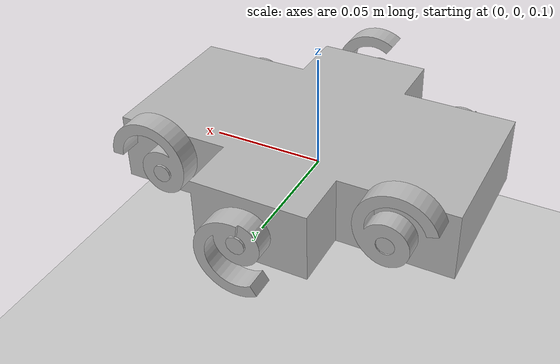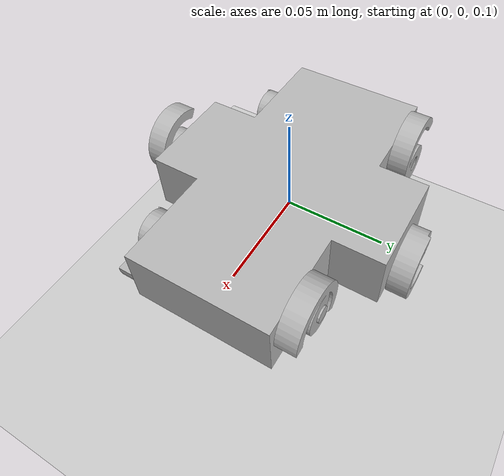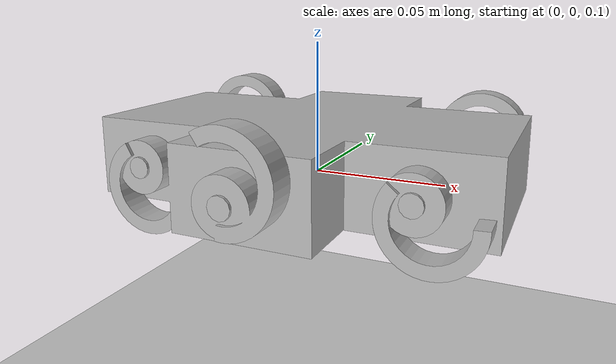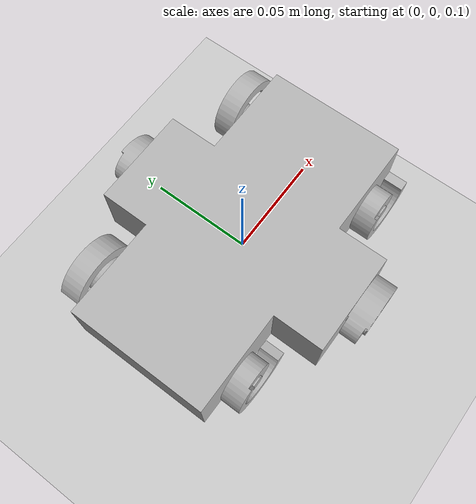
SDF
<?xml version="1.0" ?>
<sdf version="1.5">
  <world name="default">
    <include>
      <uri>model://ground_plane</uri>
    </include>

    <include>
      <uri>model://sun</uri>
    </include>

    <include>
      <uri>model://test</uri>
      <name>test</name>
      <pose>0 0 0.1 0 0 0</pose>
    </include>

  </world>
</sdf>

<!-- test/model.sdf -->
<sdf version="1.5">
  <model name="test">
    <static>false</static>
    <link name="base">
    <pose>0 0 0.0217 0 0 0</pose>
      <inertial>
  <!-- Volume:  3.9287802100e-04 -->
        <mass> 5.0 </mass> <!-- unit:kg -->

  <!-- Inertia matrix --> <!-- unit:kg m^2 -->
        <inertia>
          <ixx>  4.3036377632e-03 </ixx>
          <ixy>  0.0000000000e+00 </ixy>
          <ixz> -0.0000000000e+00 </ixz>
          <iyy>  1.1707939223e-02 </iyy>
          <iyz> -0.0000000000e+00 </iyz>
          <izz>  8.1490764216e-03 </izz>
        </inertia>
      </inertial>
      <collision name="collision">
        <geometry>
          <mesh>
            <uri>model://test/meshes/test.dae</uri>
          </mesh>
        </geometry>
      </collision>
      <visual name="visual">
        <geometry>
          <mesh>
            <uri>model://test/meshes/test.dae</uri>
          </mesh>
        </geometry>
      </visual>
      <sensor name="base_laser" type="ray">
        <always_on>1</always_on>
        <visualize>0</visualize>
        <update_rate>20.000000</update_rate>
        <pose>0.08 0 0 0 0 0</pose>
        <ray>
          <noise>
           <type>gaussian</type>
           <mean>0.0</mean>
           <stddev>0.1</stddev>
          </noise>
          <scan>
            <horizontal>
              <samples>320</samples>
              <resolution>1.000000</resolution>
              <min_angle>-2.268900</min_angle>
              <max_angle>2.268900</max_angle>
            </horizontal>
          </scan>
          <range>
            <min>0.080000</min>
            <max>10.000000</max>
            <resolution>0.010000</resolution>
          </range>
        </ray>
        <plugin name='laser_controller' filename='libgazebo_ros_laser.so'>
          <gaussianNoise>0.005</gaussianNoise>
          <alwaysOn>1</alwaysOn>
          <updateRate>20</updateRate>
          <topicName>scan</topicName>
          <frameName>laser</frameName>
        </plugin>
      </sensor>
    </link>

    <link name="leg1">

      <pose>0 0.0605 0.0067 0 0 0</pose>

        <inertial>
  <!-- Volume:  4.7874590000e-06 -->
          <mass> 0.5 </mass>
  <!-- Inertia matrix -->
          <inertia>
            <ixx>  5.5139218947e-05 </ixx>
            <ixy>  3.1059482703e-06 </ixy>
            <ixz>  7.4517609446e-07 </ixz>
            <iyy>  3.3311825751e-05 </iyy>
   	    <iyz> -6.4708648158e-07 </iyz>
   	    <izz>  8.0856494019e-05 </izz>
          </inertia>
        </inertial>
        <collision name="collision">
        <geometry>
          <mesh>
            <uri>model://test/meshes/leg1.dae</uri>
          </mesh>
        </geometry>
        <surface>
          <friction>
            <ode>
              <mu>0.0</mu>
              <mu2>0.0</mu2>
            </ode>
          </friction>
        </surface>
        </collision>
        <visual name="visual">
          <geometry>
            <mesh>
              <uri>model://test/meshes/leg1.dae</uri>
            </mesh>
          </geometry>
        </visual>
      </link>

    <link name="leg2">
      <pose>0 -0.0605 0.0067 0 0 0</pose>
      <inertial>
  <!-- Volume:  4.7874590000e-06 -->
        <mass> 0.5 </mass>
  <!-- Inertia matrix -->
        <inertia>
          <ixx>  5.5139218947e-05 </ixx>
          <ixy> -3.1059482703e-06 </ixy>
          <ixz> -7.4517609446e-07 </ixz>
          <iyy>  3.3311825751e-05 </iyy>
          <iyz> -6.4708648158e-07 </iyz>
          <izz>  8.0856494019e-05 </izz>
        </inertia>
      </inertial>
      <collision name="collision">
        <geometry>
          <mesh>
            <uri>model://test/meshes/leg2.dae</uri>
          </mesh>
        </geometry>
      <surface>
        <friction>
          <ode>
            <mu>0.0</mu>
            <mu2>0.0</mu2>
          </ode>
        </friction>
      </surface>
        </collision>
      <visual name="visual">
        <geometry>
          <mesh>
            <uri>model://test/meshes/leg2.dae</uri>
          </mesh>
        </geometry>
      </visual>
    </link>

    <link name="leg3">

      <pose>-0.05 0.0455 0.0067 0 0 0</pose>

      <inertial>
  <!-- Volume:  4.7874600000e-06 -->
        <mass> 0.5 </mass>

  <!-- Inertia matrix -->
        <inertia>
          <ixx>  4.9836416388e-05 </ixx>
          <ixy>  9.8628395851e-06 </ixy>
          <ixz> -1.8669607683e-07 </ixz>
          <iyy>  3.8614630723e-05 </iyy>
          <iyz> -9.6909425875e-07 </iyz>
          <izz>  8.0856487574e-05 </izz>
        </inertia>
      </inertial>
      <collision name="collision">
        <geometry>
          <mesh>
            <uri>model://test/meshes/leg3.dae</uri>
          </mesh>
        </geometry>
      <surface>
        <friction>
          <ode>
            <mu>0.0</mu>
            <mu2>0.0</mu2>
          </ode>
        </friction>
      </surface>
        </collision>
      <visual name="visual">
        <geometry>
          <mesh>
            <uri>model://test/meshes/leg3.dae</uri>
          </mesh>
        </geometry>
      </visual>
    </link>

    <link name="leg4">

      <pose>-0.05 -0.0355 0.0067 0 0 0</pose>
      <inertial>
  <!-- Volume:  4.7874600000e-06 -->
        <mass> 0.5 </mass>

  <!-- Inertia matrix -->
        <inertia>
          <ixx>  4.9836416388e-05 </ixx>
          <ixy>  9.8628395851e-06 </ixy>
          <ixz>  1.8669607683e-07 </ixz>
          <iyy>  3.8614630723e-05 </iyy>
          <iyz>  9.6909425875e-07 </iyz>
          <izz>  8.0856487574e-05 </izz>
        </inertia>
      </inertial>
      <collision name="collision">
        <geometry>
          <mesh>
            <uri>model://test/meshes/leg4.dae</uri>
          </mesh>
        </geometry>
      <surface>
        <friction>
          <ode>
            <mu>0.0</mu>
            <mu2>0.0</mu2>
          </ode>
        </friction>
      </surface>
        </collision>
      <visual name="visual">
        <geometry>
          <mesh>
            <uri>model://test/meshes/leg4.dae</uri>
          </mesh>
        </geometry>
      </visual>
    </link>

    <link name="leg5">

     <pose>0.05 0.0355 0.0067 0 0 0</pose>

      <inertial>
  <!-- Volume:  4.7874720000e-06 -->
        <mass> 0.5 </mass>

  <!-- Inertia matrix -->
        <inertia>
    	  <ixx>  4.2010292697e-05 </ixx>
   	   <ixy> -1.1128764826e-05 </ixy>
    	  <ixz>  1.6360409001e-07 </ixz>
    	  <iyy>  4.6440971352e-05 </iyy>
    	  <iyz>  9.7325895587e-07 </iyz>
    	  <izz>  8.0856713105e-05 </izz>
  	</inertia>
      </inertial>
      <collision name="collision">
        <geometry>
          <mesh>
            <uri>model://test/meshes/leg5.dae</uri>
          </mesh>
        </geometry>
      <surface>
        <friction>
          <ode>
            <mu>0.0</mu>
            <mu2>0.0</mu2>
          </ode>
        </friction>
      </surface>
        </collision>
      <visual name="visual">
        <geometry>
          <mesh>
            <uri>model://test/meshes/leg5.dae</uri>
          </mesh>
        </geometry>
      </visual>
    </link>

    <link name="leg6">

      <pose>0.05 -0.0355 0.0067 0 0 0</pose>

      <inertial>
  <!-- Volume:  4.7874720000e-06 -->
  	<mass> 0.5 </mass>

  <!-- Inertia matrix -->
  	<inertia>
    	  <ixx>  4.2010292697e-05 </ixx>
    	  <ixy>  1.1128764826e-05 </ixy>
    	  <ixz> -1.6360409001e-07 </ixz>
    	  <iyy>  4.6440971352e-05 </iyy>
    	  <iyz>  9.7325895587e-07 </iyz>
   	  <izz>  8.0856713105e-05 </izz>
  	</inertia>
      </inertial>
      <collision name="collision">
        <geometry>
          <mesh>
            <uri>model://test/meshes/leg6.dae</uri>
          </mesh>
        </geometry>
        <surface>
          <friction>
            <ode>
              <mu>0.0</mu>
              <mu2>0.0</mu2>
            </ode>
          </friction>
        </surface>
      </collision>
      <visual name="visual">
        <geometry>
          <mesh>
            <uri>model://test/meshes/leg6.dae</uri>
          </mesh>
        </geometry>
      </visual>
    </link>

      <joint type="revolute" name="leg1">
        <pose>0 0 0 0 0 0</pose>
        <child>leg1</child>
        <parent>base</parent>
        <axis>
          <xyz>0 1 0</xyz>
          <limit>
            <lower>-10000000000000000000</lower>
            <upper>100000000000000</upper>

            <velocity>0</velocity>
          </limit>
          <dynamics>
            <spring_reference>1</spring_reference>
            <spring_stiffness>1</spring_stiffness>
          </dynamics>

        </axis>
      </joint>

      <joint type="revolute" name="leg2">
        <pose>0 0 0 0 0 0</pose>
        <child>leg2</child>
        <parent>base</parent>
        <axis>
          <xyz>0 1 0</xyz>
          <limit>
            <lower>-10000000000000000000</lower>
            <upper>100000000000000</upper>

            <velocity>0</velocity>
          </limit>
          <dynamics>
            <spring_reference>1</spring_reference>
            <spring_stiffness>1</spring_stiffness>
          </dynamics>

        </axis>
      </joint>

      <joint type="revolute" name="leg3">
        <pose>0 0 0 0 0 0</pose>
        <child>leg3</child>
        <parent>base</parent>
        <axis>
          <xyz>0 1 0</xyz>
          <dynamics>
            <spring_reference>1</spring_reference>
            <spring_stiffness>1</spring_stiffness>
          </dynamics>
          <limit>
            <lower>-10000000000000000000</lower>
            <upper>100000000000000</upper>

            <velocity>0</velocity>
          </limit>

        </axis>
      </joint>

      <joint type="revolute" name="leg4">
        <pose>0 0 0 0 0 0</pose>
        <child>leg4</child>
        <parent>base</parent>
        <axis>
          <xyz>0 1 0</xyz>
          <limit>
            <lower>-10000000000000000000</lower>
            <upper>100000000000000</upper>

            <velocity>0</velocity>
          </limit>
          <dynamics>
            <spring_reference>1</spring_reference>
            <spring_stiffness>1</spring_stiffness>
          </dynamics>

        </axis>
      </joint>

      <joint type="revolute" name="leg5">
        <pose>0 0 0 0 0 0</pose>
        <child>leg5</child>
        <parent>base</parent>
        <axis>
          <xyz>0 1 0</xyz>
          <limit>
            <lower>-10000000000000000000</lower>
            <upper>100000000000000</upper>

            <velocity>0</velocity>
          </limit>
          <dynamics>
            <spring_reference>1</spring_reference>
            <spring_stiffness>1</spring_stiffness>
          </dynamics>

        </axis>
      </joint>

      <joint type="revolute" name="leg6">
        <pose>0 0 0 0 0 0</pose>
        <child>leg6</child>
        <parent>base</parent>
        <axis>
          <xyz>0 1 0</xyz>
          <limit>
            <lower>-10000000000000000000</lower> <!-- an attribute specifying the lowwer joint limit (radians for revoluite joint, meters for prismatic joints). omit if joint is continuous. -->
            <upper>100000000000000</upper> <!-- an attribute specifying the upper joint limit (radians for revoluite joint, meters for prismatic joints). omit if joint is continuous. -->

            <velocity>0</velocity>
          </limit>
            <dynamics>
              <spring_reference>1</spring_reference> <!-- the spring reference position for joint axis  -->
              <spring_stiffness>1</spring_stiffness>  <!-- the spring stiffness for joint axis  -->

            </dynamics>

        </axis>
      </joint>

  </model>
</sdf>
